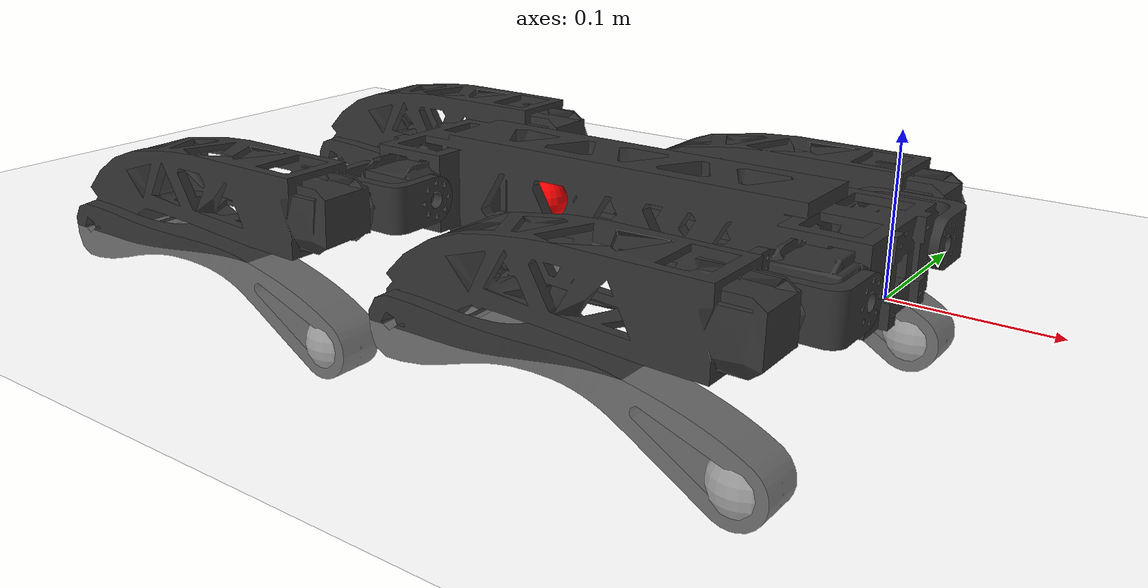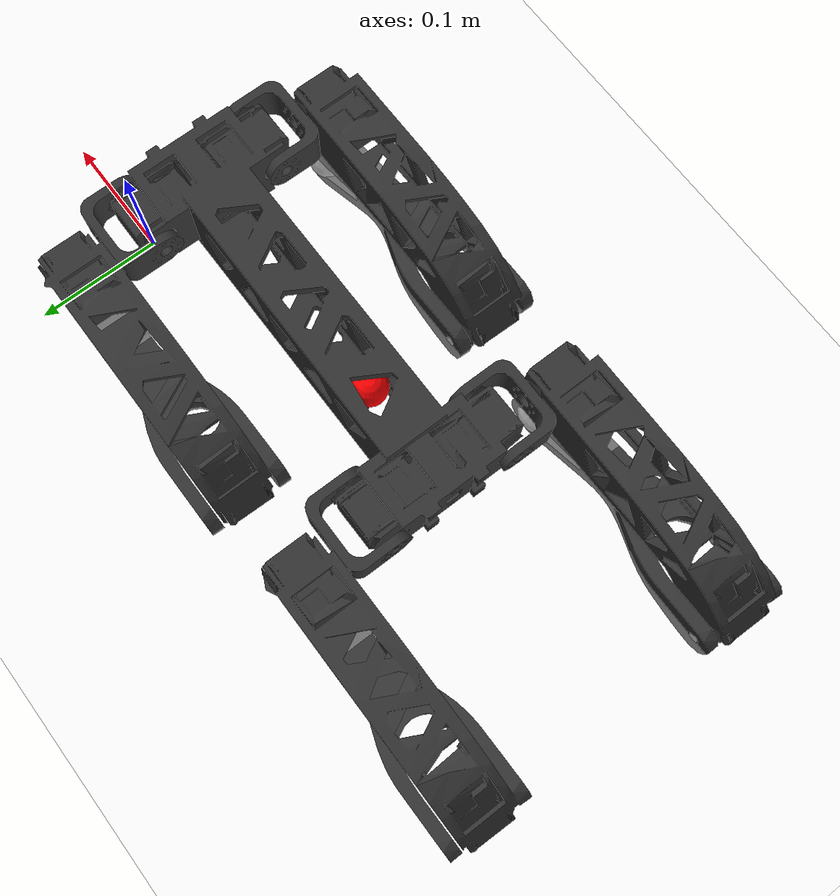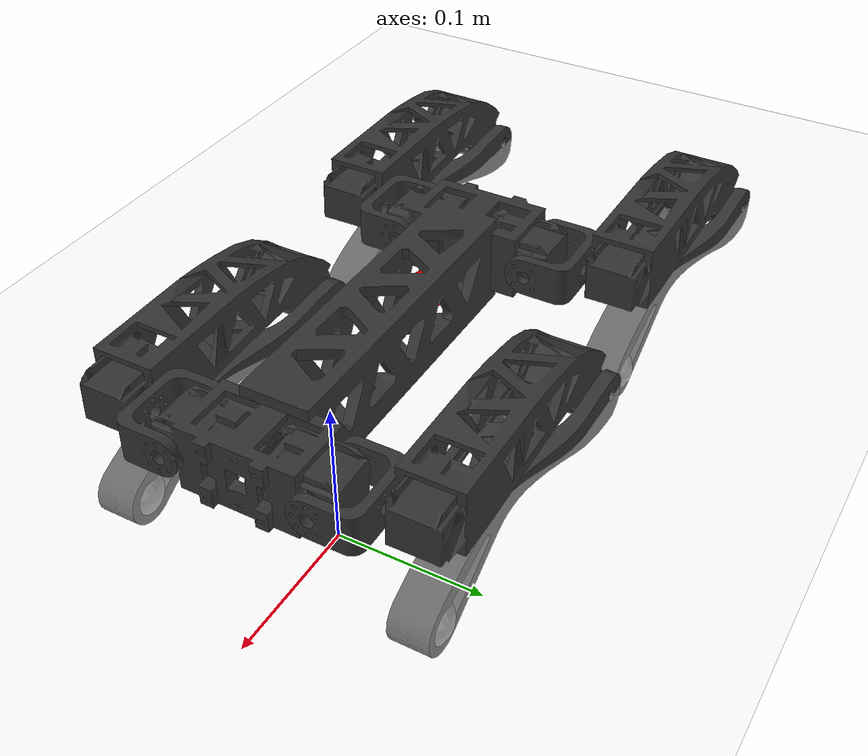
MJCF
<mujoco model="quad scene">
  <include file="rumi.xml"/>

  <statistic center="0 0 0.1" extent="0.8" meansize="0.04"/>

  <visual>
    <headlight diffuse=".8 .8 .8" ambient=".2 .2 .2" specular="1 1 1"/>
    <rgba force="1 0 0 1"/>
    <global azimuth="120" elevation="-20"/>
    <map force="0.01"/>
    <scale forcewidth="0.3" contactwidth="0.5" contactheight="0.2"/>
    <quality shadowsize="8192"/>
  </visual>

  <asset>
    <texture type="skybox" builtin="gradient" rgb1="1 1 1" rgb2="1 1 1" width="800" height="800"/>
    <texture type="2d" name="groundplane" builtin="checker" mark="edge" rgb1="1 1 1" rgb2="1 1 1" markrgb="0 0 0" width="300" height="300"/>
    <material name="groundplane" texture="groundplane" texuniform="true" texrepeat="5 5" reflectance="0"/>
  </asset>

  <worldbody>
    <geom name="floor" size="0 0 0.01" type="plane" material="groundplane" priority="1" friction="0.6" condim="3" contype="1" conaffinity="0"/>
  </worldbody>

  <keyframe>

    <key name="zero" qpos="0 0 0.04 1 0 0 0 0 0 0 0 0 0 0 0 0 0 0 0" ctrl="0 0 0 0 0 0 0 0 0 0 0 0"/>
    <key name="real_sitting" qpos="0 0 0.04 0 1 0 0 0 0 -1.2793 0 0 1.2931 0 0 -1.1628 0 0 1.1137" ctrl="0 0 -1.2793 0 0 1.2931 0 0 -1.1628 0 0 1.1137"/>
    <key name="stand_full" qpos="0.00210009 -0.00113166 0.242451 0.99972 -0.00047952 0.00175363 0.0235741 0.0 -0.4 -1.2 0.0 0.4 1.2 0.0 -0.4 -1.2 0.0 0.4 1.2" ctrl="0 -0.4 -1.2 0 0.4 1.2 0 -0.4 -1.2 0 0.4 1.2" />
    <key name="stand_full_old" qpos="0.0 0.0 0.226207 1.0 0.0 0.0 0.0 -0.00055681 -0.29 -0.644969 -0.000992173 0.289978 0.643715 0.00827629 -0.289931 -0.619339 0.00777279 0.289948 0.618087" ctrl="0 -0.28 -0.66 0 0.28 0.66 0 -0.28 -0.66 0 0.28 0.66"/>
    <key name="stand_full_v2" qpos="0.0 0.0 0.226207 1.0 0.0 0.0 0.0 -0.00055681 -0.29 -0.644969 -0.000992173 0.289978 0.643715 0.00827629 -0.289931 -0.619339 0.00777279 0.289948 0.618087" ctrl="0.1 0 -0.66 0.1 0.28 0.66 0.1 -0.28 -0.66 0.1 0.28 0.66"/>

  </keyframe>

</mujoco>

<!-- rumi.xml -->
<mujoco model="Rumi Quadruped">
  <compiler angle="radian" meshdir="assets/meshes" eulerseq="zyx"/>

  <!-- Global Settings -->
  <default>
    <default class="rumi">
      <!-- This globaly disables all collisions. -->
      <geom condim="1" contype="0" conaffinity="0"/>
      <!-- Joint damping and armature provide numerical stability -->
      <!-- The below values are obtained from the BAM repo -->
      <!-- Result of sysid with Kp=10  -->
      <!-- Result of sysid with Kp=2.5 -->
      <!-- Result of sysid with Kp=2.5 and then fine tuning with Kp=10 -->
      <joint pos="0 0 0" axis="0 1 0" armature="0.031" damping="0.794" frictionloss="0.008453"/>
      <!-- kp: position gain, kv: velocity gain (derivative damping), forcerange: actuator limits -->
      <position inheritrange="1" kp="6.0" kv="0" forcerange="-6.0 6.0"/>
      <!-- Joint ranges and constants for section of legs -->
      <default class="hip">
        <joint axis="1 0 0"/>
      </default>
      <default class="thigh">
        <joint axis="0 1 0"/>
      </default>
      <default class="calf">
        <joint axis="0 1 0"/>
      </default>
      <!-- Visual Meshes -->
      <default class="visual">
        <geom type="mesh" contype="0" conaffinity="0" group="2" material="dark"/>
      </default>
      <!-- Collision Meshes -->
      <default class="collision">
        <geom group="3" type="capsule" contype="1" conaffinity="1" condim="3"/>

        <!-- Upper Leg/Thigh Collisions -->
        <default class="upper_leg_collision1">
          <geom size="0.025" fromto="0 0 0 -0.16 0 0.005"/>
        </default>
        <default class="upper_leg_collision2">
          <geom size="0.025" fromto="-0.16 0 0.005 -0.20 0 -0.038"/>
        </default>

        <!-- Lower Leg/Calf Collisions -->
        <default class="lower_leg_collision1">
          <geom size="0.02" fromto="0 0 -0.0025 0.13 0 -0.016"/>
        </default>
        <default class="lower_leg_collision2">
          <geom size="0.02" fromto="0.14 0 -0.018 0.18 0 -0.035"/>
        </default>

        <!-- Foot -->
        <default class="foot">
          <!--
          This specific line enables collisions for the feet only.
          contype=1 conaffinity=1 allows feet to collide with the floor and other bodies.
          -->
          <!-- solimp: [dmin dmax width] - contact impedance parameters -->
          <geom type="sphere" size="0.02" pos="0.20216 0 -0.04446" solimp="0.9 .95 0.022" contype="1" conaffinity="1" condim="3"/>
        </default>
      </default>
    </default>
  </default>

  <asset>
    <!-- Materials -->
    <material name="dark" rgba="0 0 0 1"/>
    <material name="upvector_arrow" rgba="0.0 1.0 0.0 1.0" />
    <material name="body_mat" rgba="0.2 0.2 0.2 1"/>
    <material name="coupler_mat" rgba="0.2 0.2 0.2 1"/>
    <material name="thigh_mat" rgba="0.2 0.2 0.2 1"/>
    <material name="calf_mat" rgba="0.2 0.2 0.2 1"/>
    <!-- Meshes -->
    <mesh class="rumi" name="body" file="body_with_motor_v2_simple.obj" scale="0.001 0.001 0.001"/>
    <mesh class="rumi" name="coupler" file="coupler_v2.stl" scale="0.001 0.001 0.001"/>
    <mesh class="rumi" name="thigh" file="upper_leg_with_motor_v2_simple.obj" scale="0.001 0.001 0.001"/>
    <mesh class="rumi" name="calf" file="lower_leg_v2_simple.obj" scale="0.001 0.001 0.001"/>
  </asset>

  <worldbody>
    <body name="body" pos="0 0 0.04" quat="1 0 0 0" childclass="rumi">
      <!-- TODO: Add camera views -->
      <camera name="side" pos="-0.214 -1.257 0.053" xyaxes="1.000 -0.013 -0.000 -0.000 -0.004 1.000" mode="trackcom"/>
      <inertial pos="-0.140 -0.054 0" quat="1 0 0 0" mass="0.8" diaginertia="0.0001 0.002 0.002"/>
      <freejoint/>
      <geom class="visual" mesh="body" material="body_mat"/>
      <!-- Body Collision -->
      <geom name="body_collision1" class="collision" size="0.04" fromto="0.0 -0.054 0 -0.28 -0.054 0" type="capsule"/>
      <geom name="body_collision2" class="collision" size="0.035" fromto="0.0 -0.1 0 0.0 -0.01 0" type="capsule"/>
      <geom name="body_collision3" class="collision" size="0.035" fromto="-0.28 -0.1 0 -0.28 -0.01 0" type="capsule"/>

      <!-- Extra weight representing components, can also be used to move the COM forwards -->

      <!-- TODO: Add sites for IMU and other sensors if required -->
      <site name="imu" pos="-0.205 -0.057 -0.004" quat="1 0 0 0" size="0.015" rgba="1 0 0 1"/>

      <!-- Upvector arrow visualization -->

      <!-- Front Left Leg -->
      <body name="FL_hip" pos="0 0 0" quat="1 0 0 0">
        <inertial pos="0 0.016 0" quat="1 0 0 0" mass="0.01" diaginertia="0.0001 0.0001 0.0001"/>
        <joint class="hip" name="FL_hip_joint" range="-0.52 0.48"/>
        <geom class="visual" mesh="coupler" material="coupler_mat"/>
        <body name="FL_thigh" pos="0 0.0595 0">
          <inertial pos="-0.10348 -0.0014 0.000274" quat="1 0 0 0" mass="0.340" diaginertia="0.00003 0.0002 0.0002"/>
          <joint class="thigh" name="FL_thigh_joint" range="-1.22 0.68"/>
          <geom class="visual" mesh="thigh" material="thigh_mat"/>
          <!-- Thigh/Upper Leg Collisions -->
          <geom name="FL_thigh_collision1" class="upper_leg_collision1"/>
          <geom name="FL_thigh_collision2" class="upper_leg_collision2"/>
          <body name="FL_calf" pos="-0.20214 0 -0.038" quat="1 0 0 0">
            <inertial pos="0.1222 -0.01698 0" quat="1 0 0 0" mass="0.058" diaginertia="0.00003 0.0002 0.0002"/>
            <joint class="calf" name="FL_calf_joint" axis="0 -1 0" range="-1.51 0.1"/>
            <geom class="visual" mesh="calf" material="calf_mat"/>
            <!-- Calf/Lower Leg Collisions -->
            <geom name="FL_calf_collision1" class="lower_leg_collision1"/>
            <geom name="FL_calf_collision2" class="lower_leg_collision2"/>
            <geom name="FL_foot_collision" class="foot"/>
            <site name="FL" pos="0.20216 0 -0.04446" size="0.02"/>
          </body>
        </body>
      </body>

      <!-- Front Right Leg -->
      <body name="FR_hip" pos="0 -0.1096 0" quat="0 1 0 0">
        <inertial pos="0 0.016 0" quat="1 0 0 0" mass="0.01" diaginertia="0.0001 0.0001 0.0001"/>
        <joint class="hip" name="FR_hip_joint" axis="-1 0 0" range="-0.52 0.48"/>
        <geom class="visual" mesh="coupler" material="coupler_mat"/>
        <body name="FR_thigh" pos="0 0.0595 0" quat="0 1 0 0">
          <inertial pos="-0.10348 -0.0014 0.000274" quat="1 0 0 0" mass="0.340" diaginertia="0.00003 0.0002 0.0002"/>
          <joint class="thigh" name="FR_thigh_joint" axis="0 -1 0" range="-1.22 1.22"/>
          <geom class="visual" mesh="thigh" material="thigh_mat"/>
          <!-- Thigh/Upper Leg Collisions -->
          <geom name="FR_thigh_collision1" class="upper_leg_collision1"/>
          <geom name="FR_thigh_collision2" class="upper_leg_collision2"/>
          <body name="FR_calf" pos="-0.20214 0 -0.038" quat="1 0 0 0">
            <inertial pos="0.1222 -0.01698 0" quat="1 0 0 0" mass="0.058" diaginertia="0.00003 0.0002 0.0002"/>
            <joint class="calf" name="FR_calf_joint" range="-0.1 1.51"/>
            <geom class="visual" mesh="calf" material="calf_mat"/>
            <!-- Calf/Lower Leg Collisions -->
            <geom name="FR_calf_collision1" class="lower_leg_collision1"/>
            <geom name="FR_calf_collision2" class="lower_leg_collision2"/>
            <geom name="FR_foot_collision" class="foot"/>
            <site name="FR" pos="0.20216 0 -0.04446" size="0.02"/>
          </body>
        </body>
      </body>

      <!-- Back Left Leg -->
      <body name="BL_hip" pos="-0.2806 0 0" quat="1 0 0 0">
        <inertial pos="0 0.016 0" quat="1 0 0 0" mass="0.01" diaginertia="0.0001 0.0001 0.0001"/>
        <joint class="hip" name="BL_hip_joint" range="-0.52 0.48"/>
        <geom class="visual" mesh="coupler" material="coupler_mat"/>
        <body name="BL_thigh" pos="0 0.0595 0">
          <inertial pos="-0.10348 -0.0014 0.000274" quat="1 0 0 0" mass="0.340" diaginertia="0.00003 0.0002 0.0002"/>
          <joint class="thigh" name="BL_thigh_joint" range="-1.22 1.22"/>
          <geom class="visual" mesh="thigh" material="thigh_mat"/>
          <!-- Thigh/Upper Leg Collisions -->
          <geom name="BL_thigh_collision1" class="upper_leg_collision1"/>
          <geom name="BL_thigh_collision2" class="upper_leg_collision2"/>
          <body name="BL_calf" pos="-0.20214 0 -0.038" quat="1 0 0 0">
            <inertial pos="0.1222 -0.01698 0" quat="1 0 0 0" mass="0.058" diaginertia="0.00003 0.0002 0.0002"/>
            <joint class="calf" name="BL_calf_joint" axis="0 -1 0" range="-1.51 0.1"/>
            <geom class="visual" mesh="calf" material="calf_mat"/>
            <!-- Calf/Lower Leg Collisions -->
            <geom name="BL_calf_collision1" class="lower_leg_collision1"/>
            <geom name="BL_calf_collision2" class="lower_leg_collision2"/>
            <geom name="BL_foot_collision" class="foot"/>
            <site name="BL" pos="0.20216 0 -0.04446" size="0.02"/>
          </body>
        </body>
      </body>

      <!-- Back Right Leg -->
      <body name="BR_hip" pos="-0.2806 -0.1096 0" quat="0 1 0 0">
        <inertial pos="0 0.016 0" quat="1 0 0 0" mass="0.01" diaginertia="0.0001 0.0001 0.0001"/>
        <joint class="hip" name="BR_hip_joint" axis="-1 0 0" range="-0.52 0.48"/>
        <geom class="visual" mesh="coupler" material="coupler_mat"/>
        <body name="BR_thigh" pos="0 0.0595 0" quat="0 1 0 0">
          <inertial pos="-0.10348 -0.0014 0.000274" quat="1 0 0 0" mass="0.340" diaginertia="0.00003 0.0002 0.0002"/>
          <joint class="thigh" name="BR_thigh_joint" axis="0 -1 0" range="-1.22 1.22"/>
          <geom class="visual" mesh="thigh" material="thigh_mat"/>
          <!-- Thigh/Upper Leg Collisions -->
          <geom name="BR_thigh_collision1" class="upper_leg_collision1"/>
          <geom name="BR_thigh_collision2" class="upper_leg_collision2"/>
          <body name="BR_calf" pos="-0.20214 0 -0.038" quat="1 0 0 0">
            <inertial pos="0.1222 -0.01698 0" quat="1 0 0 0" mass="0.058" diaginertia="0.00003 0.0002 0.0002"/>
            <joint class="calf" name="BR_calf_joint" range="-0.1 1.51"/>
            <geom class="visual" mesh="calf" material="calf_mat"/>
            <!-- Calf/Lower Leg Collisions -->
            <geom name="BR_calf_collision1" class="lower_leg_collision1"/>
            <geom name="BR_calf_collision2" class="lower_leg_collision2"/>
            <geom name="BR_foot_collision" class="foot"/>
            <site name="BR" pos="0.20216 0 -0.04446" size="0.02"/>
          </body>
        </body>
      </body>
    </body>
  </worldbody>

  <actuator>
    <position class="hip" name="FL_hip" joint="FL_hip_joint"/>
    <position class="thigh" name="FL_thigh" joint="FL_thigh_joint"/>
    <position class="calf" name="FL_calf" joint="FL_calf_joint"/>
    <position class="hip" name="FR_hip" joint="FR_hip_joint"/>
    <position class="thigh" name="FR_thigh" joint="FR_thigh_joint"/>
    <position class="calf" name="FR_calf" joint="FR_calf_joint"/>
    <position class="hip" name="BL_hip" joint="BL_hip_joint"/>
    <position class="thigh" name="BL_thigh" joint="BL_thigh_joint"/>
    <position class="calf" name="BL_calf" joint="BL_calf_joint"/>
    <position class="hip" name="BR_hip" joint="BR_hip_joint"/>
    <position class="thigh" name="BR_thigh" joint="BR_thigh_joint"/>
    <position class="calf" name="BR_calf" joint="BR_calf_joint"/>
  </actuator>

  <sensor>
    <!-- IMU-based sensors mounted on body -->
    <gyro site="imu" name="imu_ang_vel"/>
    <velocimeter site="imu" name="imu_lin_vel"/>
    <accelerometer site="imu" name="accelerometer"/>
    <framepos objtype="site" objname="imu" name="position"/>
    <framezaxis objtype="site" objname="imu" name="upvector"/>
    <framexaxis objtype="site" objname="imu" name="forwardvector"/>
    <framelinvel objtype="site" objname="imu" name="global_linvel"/>
    <frameangvel objtype="site" objname="imu" name="global_angvel"/>
    <framequat objtype="site" objname="imu" name="orientation"/>

    <!-- Foot velocity sensors (global frame) -->
    <framelinvel objtype="site" objname="FR" name="FR_global_linvel"/>
    <framelinvel objtype="site" objname="FL" name="FL_global_linvel"/>
    <framelinvel objtype="site" objname="BR" name="BR_global_linvel"/>
    <framelinvel objtype="site" objname="BL" name="BL_global_linvel"/>

    <!-- Foot position sensors (relative to IMU) -->
    <framepos objtype="site" objname="FR" name="FR_pos" reftype="site" refname="imu"/>
    <framepos objtype="site" objname="FL" name="FL_pos" reftype="site" refname="imu"/>
    <framepos objtype="site" objname="BR" name="BR_pos" reftype="site" refname="imu"/>
    <framepos objtype="site" objname="BL" name="BL_pos" reftype="site" refname="imu"/>
  </sensor>

</mujoco>
